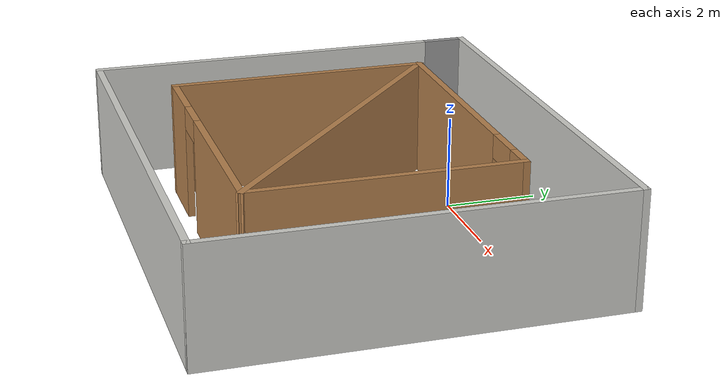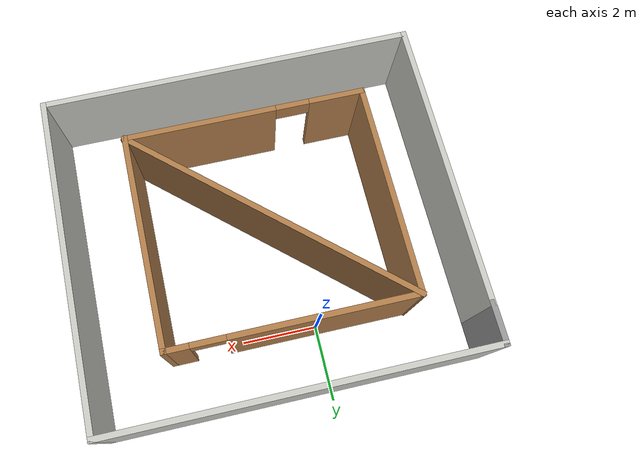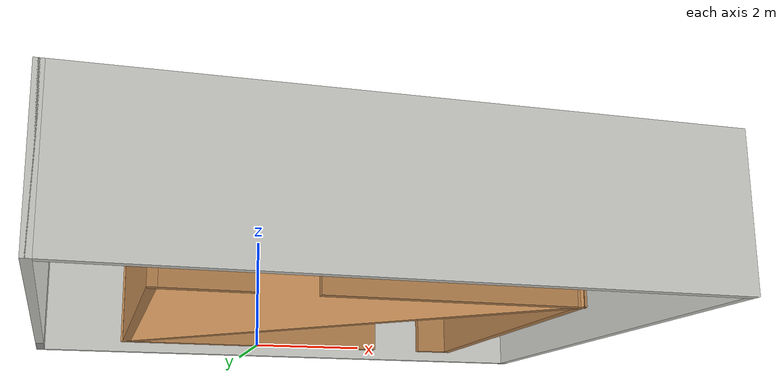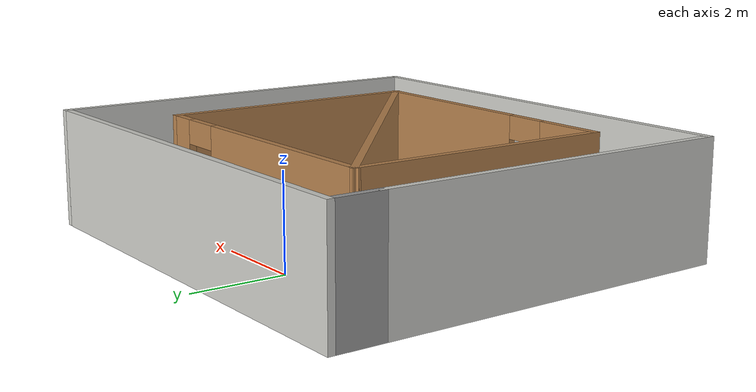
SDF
<?xml version='1.0'?>
<sdf version='1.7'>
  <model name='maze'>
    <pose>0.913805 -2.59657 0 0 -0 0</pose>
    <link name='Wall_18'>
      <collision name='Wall_18_Collision'>
        <geometry>
          <box>
            <size>7.75 0.15 2.5</size>
          </box>
        </geometry>
        <pose>0 0 1.25 0 -0 0</pose>
      </collision>
      <visual name='Wall_18_Visual'>
        <pose>0 0 1.25 0 -0 0</pose>
        <geometry>
          <box>
            <size>7.75 0.15 2.5</size>
          </box>
        </geometry>
        <material>
          <script>
            <uri>file://media/materials/scripts/gazebo.material</uri>
            <name>Gazebo/CeilingTiled</name>
          </script>
          <ambient>1 1 1 1</ambient>
        </material>
        <meta>
          <layer>0</layer>
        </meta>
      </visual>
      <pose>-4.925 -0.5 0 0 -0 -1.5708</pose>
    </link>
    <link name='Wall_19'>
      <collision name='Wall_19_Collision'>
        <geometry>
          <box>
            <size>10 0.15 2.5</size>
          </box>
        </geometry>
        <pose>0 0 1.25 0 -0 0</pose>
      </collision>
      <visual name='Wall_19_Visual'>
        <pose>0 0 1.25 0 -0 0</pose>
        <geometry>
          <box>
            <size>10 0.15 2.5</size>
          </box>
        </geometry>
        <material>
          <script>
            <uri>file://media/materials/scripts/gazebo.material</uri>
            <name>Gazebo/CeilingTiled</name>
          </script>
          <ambient>1 1 1 1</ambient>
        </material>
        <meta>
          <layer>0</layer>
        </meta>
      </visual>
      <pose>-0 -4.3 0 0 -0 0</pose>
    </link>
    <link name='Wall_20'>
      <collision name='Wall_20_Collision'>
        <geometry>
          <box>
            <size>8.75 0.15 2.5</size>
          </box>
        </geometry>
        <pose>0 0 1.25 0 -0 0</pose>
      </collision>
      <visual name='Wall_20_Visual'>
        <pose>0 0 1.25 0 -0 0</pose>
        <geometry>
          <box>
            <size>8.75 0.15 2.5</size>
          </box>
        </geometry>
        <material>
          <script>
            <uri>file://media/materials/scripts/gazebo.material</uri>
            <name>Gazebo/CeilingTiled</name>
          </script>
          <ambient>1 1 1 1</ambient>
        </material>
        <meta>
          <layer>0</layer>
        </meta>
      </visual>
      <pose>4.925 0 0 0 -0 1.5708</pose>
    </link>
    <link name='Wall_21'>
      <collision name='Wall_21_Collision'>
        <geometry>
          <box>
            <size>10 0.15 2.5</size>
          </box>
        </geometry>
        <pose>0 0 1.25 0 -0 0</pose>
      </collision>
      <visual name='Wall_21_Visual'>
        <pose>0 0 1.25 0 -0 0</pose>
        <geometry>
          <box>
            <size>10 0.15 2.5</size>
          </box>
        </geometry>
        <material>
          <script>
            <uri>file://media/materials/scripts/gazebo.material</uri>
            <name>Gazebo/CeilingTiled</name>
          </script>
          <ambient>1 1 1 1</ambient>
        </material>
        <meta>
          <layer>0</layer>
        </meta>
      </visual>
      <pose>-0 4.3 0 0 -0 3.14159</pose>
    </link>
    <link name='Wall_22'>
      <collision name='Wall_22_Collision'>
        <geometry>
          <box>
            <size>1.15 0.15 2.5</size>
          </box>
        </geometry>
        <pose>0 0 1.25 0 -0 0</pose>
      </collision>
      <visual name='Wall_22_Visual'>
        <pose>0 0 1.25 0 -0 0</pose>
        <geometry>
          <box>
            <size>1.15 0.15 2.5</size>
          </box>
        </geometry>
        <material>
          <script>
            <uri>file://media/materials/scripts/gazebo.material</uri>
            <name>Gazebo/Grey</name>
          </script>
          <ambient>1 1 1 1</ambient>
        </material>
        <meta>
          <layer>0</layer>
        </meta>
      </visual>
      <pose>-4.925 3.8 0 0 -0 -1.5708</pose>
    </link>
    <link name='Wall_24'>
      <collision name='Wall_24_Collision'>
        <geometry>
          <box>
            <size>5.75 0.15 2.5</size>
          </box>
        </geometry>
        <pose>0 0 1.25 0 -0 0</pose>
      </collision>
      <visual name='Wall_24_Visual'>
        <pose>0 0 1.25 0 -0 0</pose>
        <geometry>
          <box>
            <size>5.75 0.15 2.5</size>
          </box>
        </geometry>
        <material>
          <script>
            <uri>file://media/materials/scripts/gazebo.material</uri>
            <name>Gazebo/Wood</name>
          </script>
          <ambient>1 1 1 1</ambient>
        </material>
        <meta>
          <layer>0</layer>
        </meta>
      </visual>
      <pose>-3.35604 -0.084515 0 0 -0 -1.5708</pose>
    </link>
    <link name='Wall_25'>
      <pose>-0.181039 -2.88451 0 0 -0 0</pose>
      <visual name='Wall_25_Visual_0'>
        <pose>-2.4928 0 1.25 0 -0 0</pose>
        <geometry>
          <box>
            <size>1.51439 0.15 2.5</size>
          </box>
        </geometry>
        <material>
          <script>
            <uri>file://media/materials/scripts/gazebo.material</uri>
            <name>Gazebo/Wood</name>
          </script>
          <ambient>1 1 1 1</ambient>
        </material>
        <meta>
          <layer>0</layer>
        </meta>
      </visual>
      <collision name='Wall_25_Collision_0'>
        <geometry>
          <box>
            <size>1.51439 0.15 2.5</size>
          </box>
        </geometry>
        <pose>-2.4928 0 1.25 0 -0 0</pose>
      </collision>
      <visual name='Wall_25_Visual_1'>
        <pose>1.2072 0 1.25 0 -0 0</pose>
        <geometry>
          <box>
            <size>4.08561 0.15 2.5</size>
          </box>
        </geometry>
        <material>
          <script>
            <uri>file://media/materials/scripts/gazebo.material</uri>
            <name>Gazebo/Wood</name>
          </script>
          <ambient>1 1 1 1</ambient>
        </material>
        <meta>
          <layer>0</layer>
        </meta>
      </visual>
      <collision name='Wall_25_Collision_1'>
        <geometry>
          <box>
            <size>4.08561 0.15 2.5</size>
          </box>
        </geometry>
        <pose>1.2072 0 1.25 0 -0 0</pose>
      </collision>
      <visual name='Wall_25_Visual_2'>
        <pose>-1.28561 0 2.25 0 -0 0</pose>
        <geometry>
          <box>
            <size>0.9 0.15 0.5</size>
          </box>
        </geometry>
        <material>
          <script>
            <uri>file://media/materials/scripts/gazebo.material</uri>
            <name>Gazebo/Wood</name>
          </script>
          <ambient>1 1 1 1</ambient>
        </material>
        <meta>
          <layer>0</layer>
        </meta>
      </visual>
      <collision name='Wall_25_Collision_2'>
        <geometry>
          <box>
            <size>0.9 0.15 0.5</size>
          </box>
        </geometry>
        <pose>-1.28561 0 2.25 0 -0 0</pose>
      </collision>
    </link>
    <link name='Wall_26'>
      <collision name='Wall_26_Collision'>
        <geometry>
          <box>
            <size>5.75 0.15 2.5</size>
          </box>
        </geometry>
        <pose>0 0 1.25 0 -0 0</pose>
      </collision>
      <visual name='Wall_26_Visual'>
        <pose>0 0 1.25 0 -0 0</pose>
        <geometry>
          <box>
            <size>5.75 0.15 2.5</size>
          </box>
        </geometry>
        <material>
          <script>
            <uri>file://media/materials/scripts/gazebo.material</uri>
            <name>Gazebo/Wood</name>
          </script>
          <ambient>1 1 1 1</ambient>
        </material>
        <meta>
          <layer>0</layer>
        </meta>
      </visual>
      <pose>2.99396 -0.084515 0 0 -0 1.5708</pose>
    </link>
    <link name='Wall_27'>
      <pose>-0.181039 2.71549 0 0 -0 3.14159</pose>
      <visual name='Wall_27_Visual_0'>
        <pose>-2.89921 0 1.25 0 -0 0</pose>
        <geometry>
          <box>
            <size>0.701573 0.15 2.5</size>
          </box>
        </geometry>
        <material>
          <script>
            <uri>file://media/materials/scripts/gazebo.material</uri>
            <name>Gazebo/Wood</name>
          </script>
          <ambient>1 1 1 1</ambient>
        </material>
        <meta>
          <layer>0</layer>
        </meta>
      </visual>
      <collision name='Wall_27_Collision_0'>
        <geometry>
          <box>
            <size>0.701573 0.15 2.5</size>
          </box>
        </geometry>
        <pose>-2.89921 0 1.25 0 -0 0</pose>
      </collision>
      <visual name='Wall_27_Visual_1'>
        <pose>0.800786 0 1.25 0 -0 0</pose>
        <geometry>
          <box>
            <size>4.89843 0.15 2.5</size>
          </box>
        </geometry>
        <material>
          <script>
            <uri>file://media/materials/scripts/gazebo.material</uri>
            <name>Gazebo/Wood</name>
          </script>
          <ambient>1 1 1 1</ambient>
        </material>
        <meta>
          <layer>0</layer>
        </meta>
      </visual>
      <collision name='Wall_27_Collision_1'>
        <geometry>
          <box>
            <size>4.89843 0.15 2.5</size>
          </box>
        </geometry>
        <pose>0.800786 0 1.25 0 -0 0</pose>
      </collision>
      <visual name='Wall_27_Visual_2'>
        <pose>-2.09843 0 2.25 0 -0 0</pose>
        <geometry>
          <box>
            <size>0.9 0.15 0.5</size>
          </box>
        </geometry>
        <material>
          <script>
            <uri>file://media/materials/scripts/gazebo.material</uri>
            <name>Gazebo/Wood</name>
          </script>
          <ambient>1 1 1 1</ambient>
        </material>
        <meta>
          <layer>0</layer>
        </meta>
      </visual>
      <collision name='Wall_27_Collision_2'>
        <geometry>
          <box>
            <size>0.9 0.15 0.5</size>
          </box>
        </geometry>
        <pose>-2.09843 0 2.25 0 -0 0</pose>
      </collision>
    </link>
    <link name='Wall_29'>
      <collision name='Wall_29_Collision'>
        <geometry>
          <box>
            <size>8.61655 0.15 2.5</size>
          </box>
        </geometry>
        <pose>0 0 1.25 0 -0 0</pose>
      </collision>
      <visual name='Wall_29_Visual'>
        <pose>0 0 1.25 0 -0 0</pose>
        <geometry>
          <box>
            <size>8.61655 0.15 2.5</size>
          </box>
        </geometry>
        <material>
          <script>
            <uri>file://media/materials/scripts/gazebo.material</uri>
            <name>Gazebo/Wood</name>
          </script>
          <ambient>1 1 1 1</ambient>
        </material>
        <meta>
          <layer>0</layer>
        </meta>
      </visual>
      <pose>-0.181039 -0.084515 0 0 -0 -0.722719</pose>
    </link>
    <static>1</static>
  </model>
</sdf>
